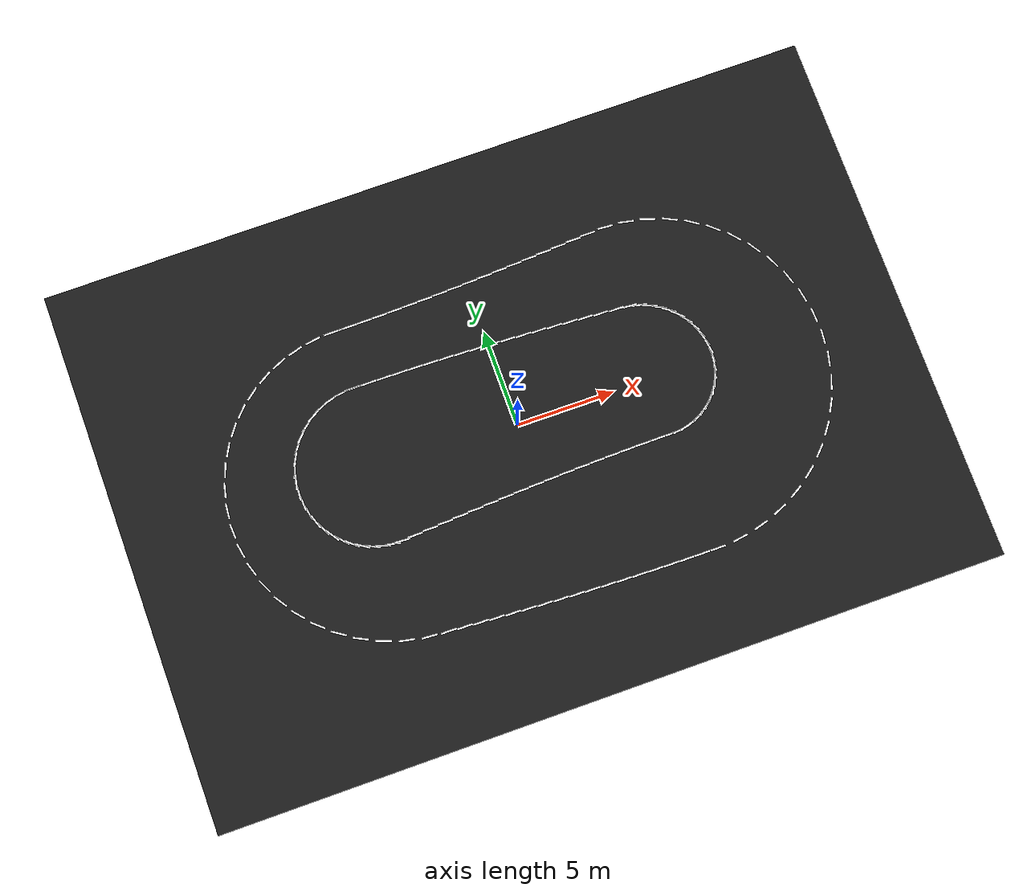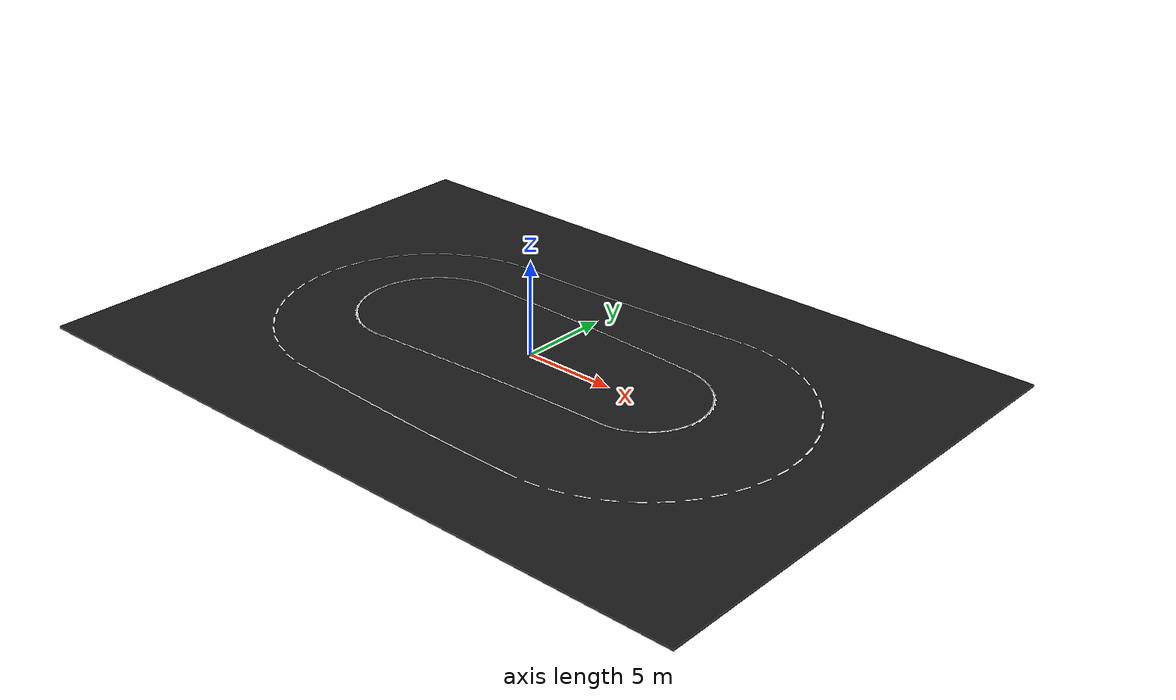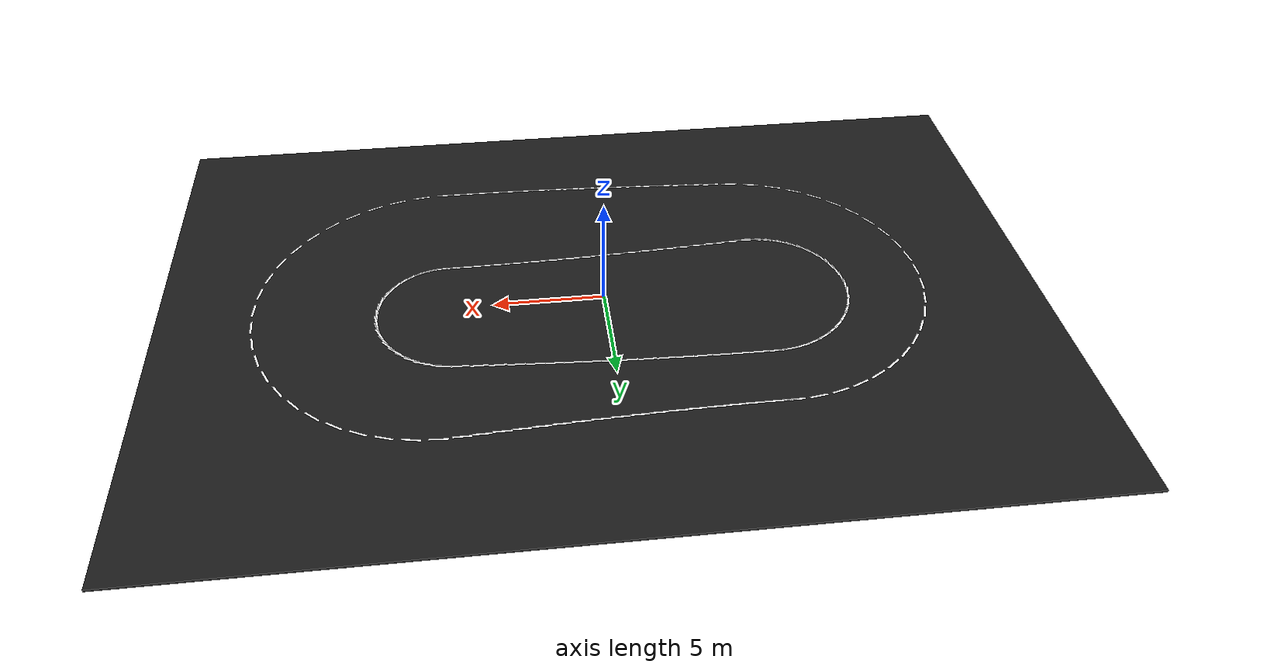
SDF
<sdf version="1.9">
 <world name="lane_vary_no_barrel">
  <physics name="1ms" type="ignored">
   <max_step_size>0.001</max_step_size>
   <real_time_factor>1.0</real_time_factor>
  </physics>
  <plugin filename="libgz-sim8-physics-system.so" name="gz::sim::systems::Physics"/>
  <plugin filename="gz-sim-sensors-system" name="gz::sim::systems::Sensors"/>
  <plugin filename="libgz-sim8-scene-broadcaster-system.so" name="gz::sim::systems::SceneBroadcaster"/>
  <include><uri>https://fuel.gazebosim.org/1.0/openrobotics/models/Sun</uri></include>
  <model name="oval_track_small">
   <static>true</static>
   <link name="track_link">
    <collision name="track_collision">
     <pose>0 0 -0.05 0 0 0</pose>
     <geometry><box><size>40 28 0.10</size></box></geometry>
     <surface><friction><ode><mu>1.2</mu><mu2>1.2</mu2></ode></friction></surface>
    </collision>
    <visual name="track_visual">
     <pose>0 0 -0.05 0 0 0</pose>
     <geometry><box><size>40 28 0.10</size></box></geometry>
     <material>
      <ambient>0.08 0.08 0.08 1</ambient>
      <diffuse>0.10 0.10 0.10 1</diffuse>
      <specular>0.02 0.02 0.02 1</specular>
     </material>
    </visual>
    <visual name="outer_lane_000">
     <pose>-7.0000 7.5240 0.0010 0 0 0.000000</pose>
     <geometry><box><size>0.8000 0.1000 0.0050</size></box></geometry>
     <material><ambient>1 1 1 1</ambient><diffuse>1 1 1 1</diffuse><specular>0.1 0.1 0.1 1</specular></material>
    </visual>
    <visual name="inner_lane_000">
     <pose>-7.0000 4.4760 0.0010 0 0 0.000000</pose>
     <geometry><box><size>0.8000 0.1000 0.0050</size></box></geometry>
     <material><ambient>1 1 1 1</ambient><diffuse>1 1 1 1</diffuse><specular>0.1 0.1 0.1 1</specular></material>
    </visual>
    <visual name="outer_lane_001">
     <pose>-6.2000 7.5262 0.0010 0 0 0.000000</pose>
     <geometry><box><size>0.8000 0.1000 0.0050</size></box></geometry>
     <material><ambient>1 1 1 1</ambient><diffuse>1 1 1 1</diffuse><specular>0.1 0.1 0.1 1</specular></material>
    </visual>
    <visual name="inner_lane_001">
     <pose>-6.2000 4.4738 0.0010 0 0 0.000000</pose>
     <geometry><box><size>0.8000 0.1000 0.0050</size></box></geometry>
     <material><ambient>1 1 1 1</ambient><diffuse>1 1 1 1</diffuse><specular>0.1 0.1 0.1 1</specular></material>
    </visual>
    <visual name="outer_lane_002">
     <pose>-5.4000 7.5329 0.0010 0 0 0.000000</pose>
     <geometry><box><size>0.8000 0.1000 0.0050</size></box></geometry>
     <material><ambient>1 1 1 1</ambient><diffuse>1 1 1 1</diffuse><specular>0.1 0.1 0.1 1</specular></material>
    </visual>
    <visual name="inner_lane_002">
     <pose>-5.4000 4.4671 0.0010 0 0 0.000000</pose>
     <geometry><box><size>0.8000 0.1000 0.0050</size></box></geometry>
     <material><ambient>1 1 1 1</ambient><diffuse>1 1 1 1</diffuse><specular>0.1 0.1 0.1 1</specular></material>
    </visual>
    <visual name="outer_lane_003">
     <pose>-4.6000 7.5440 0.0010 0 0 0.000000</pose>
     <geometry><box><size>0.8000 0.1000 0.0050</size></box></geometry>
     <material><ambient>1 1 1 1</ambient><diffuse>1 1 1 1</diffuse><specular>0.1 0.1 0.1 1</specular></material>
    </visual>
    <visual name="inner_lane_003">
     <pose>-4.6000 4.4560 0.0010 0 0 0.000000</pose>
     <geometry><box><size>0.8000 0.1000 0.0050</size></box></geometry>
     <material><ambient>1 1 1 1</ambient><diffuse>1 1 1 1</diffuse><specular>0.1 0.1 0.1 1</specular></material>
    </visual>
    <visual name="outer_lane_004">
     <pose>-3.8000 7.5594 0.0010 0 0 0.000000</pose>
     <geometry><box><size>0.8000 0.1000 0.0050</size></box></geometry>
     <material><ambient>1 1 1 1</ambient><diffuse>1 1 1 1</diffuse><specular>0.1 0.1 0.1 1</specular></material>
    </visual>
    <visual name="inner_lane_004">
     <pose>-3.8000 4.4406 0.0010 0 0 0.000000</pose>
     <geometry><box><size>0.8000 0.1000 0.0050</size></box></geometry>
     <material><ambient>1 1 1 1</ambient><diffuse>1 1 1 1</diffuse><specular>0.1 0.1 0.1 1</specular></material>
    </visual>
    <visual name="outer_lane_005">
     <pose>-3.0000 7.5791 0.0010 0 0 0.000000</pose>
     <geometry><box><size>0.8000 0.1000 0.0050</size></box></geometry>
     <material><ambient>1 1 1 1</ambient><diffuse>1 1 1 1</diffuse><specular>0.1 0.1 0.1 1</specular></material>
    </visual>
    <visual name="inner_lane_005">
     <pose>-3.0000 4.4209 0.0010 0 0 0.000000</pose>
     <geometry><box><size>0.8000 0.1000 0.0050</size></box></geometry>
     <material><ambient>1 1 1 1</ambient><diffuse>1 1 1 1</diffuse><specular>0.1 0.1 0.1 1</specular></material>
    </visual>
    <visual name="outer_lane_006">
     <pose>-2.2000 7.6029 0.0010 0 0 0.000000</pose>
     <geometry><box><size>0.8000 0.1000 0.0050</size></box></geometry>
     <material><ambient>1 1 1 1</ambient><diffuse>1 1 1 1</diffuse><specular>0.1 0.1 0.1 1</specular></material>
    </visual>
    <visual name="inner_lane_006">
     <pose>-2.2000 4.3971 0.0010 0 0 0.000000</pose>
     <geometry><box><size>0.8000 0.1000 0.0050</size></box></geometry>
     <material><ambient>1 1 1 1</ambient><diffuse>1 1 1 1</diffuse><specular>0.1 0.1 0.1 1</specular></material>
    </visual>
    <visual name="outer_lane_007">
     <pose>-1.4000 7.6307 0.0010 0 0 0.000000</pose>
     <geometry><box><size>0.8000 0.1000 0.0050</size></box></geometry>
     <material><ambient>1 1 1 1</ambient><diffuse>1 1 1 1</diffuse><specular>0.1 0.1 0.1 1</specular></material>
    </visual>
    <visual name="inner_lane_007">
     <pose>-1.4000 4.3693 0.0010 0 0 0.000000</pose>
     <geometry><box><size>0.8000 0.1000 0.0050</size></box></geometry>
     <material><ambient>1 1 1 1</ambient><diffuse>1 1 1 1</diffuse><specular>0.1 0.1 0.1 1</specular></material>
    </visual>
    <visual name="outer_lane_008">
     <pose>-0.6000 7.6623 0.0010 0 0 0.000000</pose>
     <geometry><box><size>0.8000 0.1000 0.0050</size></box></geometry>
     <material><ambient>1 1 1 1</ambient><diffuse>1 1 1 1</diffuse><specular>0.1 0.1 0.1 1</specular></material>
    </visual>
    <visual name="inner_lane_008">
     <pose>-0.6000 4.3377 0.0010 0 0 0.000000</pose>
     <geometry><box><size>0.8000 0.1000 0.0050</size></box></geometry>
     <material><ambient>1 1 1 1</ambient><diffuse>1 1 1 1</diffuse><specular>0.1 0.1 0.1 1</specular></material>
    </visual>
    <visual name="outer_lane_009">
     <pose>0.2000 7.6976 0.0010 0 0 0.000000</pose>
     <geometry><box><size>0.8000 0.1000 0.0050</size></box></geometry>
     <material><ambient>1 1 1 1</ambient><diffuse>1 1 1 1</diffuse><specular>0.1 0.1 0.1 1</specular></material>
    </visual>
    <visual name="inner_lane_009">
     <pose>0.2000 4.3024 0.0010 0 0 0.000000</pose>
     <geometry><box><size>0.8000 0.1000 0.0050</size></box></geometry>
     <material><ambient>1 1 1 1</ambient><diffuse>1 1 1 1</diffuse><specular>0.1 0.1 0.1 1</specular></material>
    </visual>
    <visual name="outer_lane_010">
     <pose>1.0000 7.7364 0.0010 0 0 0.000000</pose>
     <geometry><box><size>0.8000 0.1000 0.0050</size></box></geometry>
     <material><ambient>1 1 1 1</ambient><diffuse>1 1 1 1</diffuse><specular>0.1 0.1 0.1 1</specular></material>
    </visual>
    <visual name="inner_lane_010">
     <pose>1.0000 4.2636 0.0010 0 0 0.000000</pose>
     <geometry><box><size>0.8000 0.1000 0.0050</size></box></geometry>
     <material><ambient>1 1 1 1</ambient><diffuse>1 1 1 1</diffuse><specular>0.1 0.1 0.1 1</specular></material>
    </visual>
    <visual name="outer_lane_011">
     <pose>1.8000 7.7783 0.0010 0 0 0.000000</pose>
     <geometry><box><size>0.8000 0.1000 0.0050</size></box></geometry>
     <material><ambient>1 1 1 1</ambient><diffuse>1 1 1 1</diffuse><specular>0.1 0.1 0.1 1</specular></material>
    </visual>
    <visual name="inner_lane_011">
     <pose>1.8000 4.2217 0.0010 0 0 0.000000</pose>
     <geometry><box><size>0.8000 0.1000 0.0050</size></box></geometry>
     <material><ambient>1 1 1 1</ambient><diffuse>1 1 1 1</diffuse><specular>0.1 0.1 0.1 1</specular></material>
    </visual>
    <visual name="outer_lane_012">
     <pose>2.6000 7.8232 0.0010 0 0 0.000000</pose>
     <geometry><box><size>0.8000 0.1000 0.0050</size></box></geometry>
     <material><ambient>1 1 1 1</ambient><diffuse>1 1 1 1</diffuse><specular>0.1 0.1 0.1 1</specular></material>
    </visual>
    <visual name="inner_lane_012">
     <pose>2.6000 4.1768 0.0010 0 0 0.000000</pose>
     <geometry><box><size>0.8000 0.1000 0.0050</size></box></geometry>
     <material><ambient>1 1 1 1</ambient><diffuse>1 1 1 1</diffuse><specular>0.1 0.1 0.1 1</specular></material>
    </visual>
    <visual name="outer_lane_013">
     <pose>3.4000 7.8708 0.0010 0 0 0.000000</pose>
     <geometry><box><size>0.8000 0.1000 0.0050</size></box></geometry>
     <material><ambient>1 1 1 1</ambient><diffuse>1 1 1 1</diffuse><specular>0.1 0.1 0.1 1</specular></material>
    </visual>
    <visual name="inner_lane_013">
     <pose>3.4000 4.1292 0.0010 0 0 0.000000</pose>
     <geometry><box><size>0.8000 0.1000 0.0050</size></box></geometry>
     <material><ambient>1 1 1 1</ambient><diffuse>1 1 1 1</diffuse><specular>0.1 0.1 0.1 1</specular></material>
    </visual>
    <visual name="outer_lane_014">
     <pose>4.2000 7.9209 0.0010 0 0 0.000000</pose>
     <geometry><box><size>0.8000 0.1000 0.0050</size></box></geometry>
     <material><ambient>1 1 1 1</ambient><diffuse>1 1 1 1</diffuse><specular>0.1 0.1 0.1 1</specular></material>
    </visual>
    <visual name="inner_lane_014">
     <pose>4.2000 4.0791 0.0010 0 0 0.000000</pose>
     <geometry><box><size>0.8000 0.1000 0.0050</size></box></geometry>
     <material><ambient>1 1 1 1</ambient><diffuse>1 1 1 1</diffuse><specular>0.1 0.1 0.1 1</specular></material>
    </visual>
    <visual name="outer_lane_015">
     <pose>5.0000 7.9731 0.0010 0 0 0.000000</pose>
     <geometry><box><size>0.8000 0.1000 0.0050</size></box></geometry>
     <material><ambient>1 1 1 1</ambient><diffuse>1 1 1 1</diffuse><specular>0.1 0.1 0.1 1</specular></material>
    </visual>
    <visual name="inner_lane_015">
     <pose>5.0000 4.0269 0.0010 0 0 0.000000</pose>
     <geometry><box><size>0.8000 0.1000 0.0050</size></box></geometry>
     <material><ambient>1 1 1 1</ambient><diffuse>1 1 1 1</diffuse><specular>0.1 0.1 0.1 1</specular></material>
    </visual>
    <visual name="outer_lane_016">
     <pose>5.8000 8.0271 0.0010 0 0 0.000000</pose>
     <geometry><box><size>0.8000 0.1000 0.0050</size></box></geometry>
     <material><ambient>1 1 1 1</ambient><diffuse>1 1 1 1</diffuse><specular>0.1 0.1 0.1 1</specular></material>
    </visual>
    <visual name="inner_lane_016">
     <pose>5.8000 3.9729 0.0010 0 0 0.000000</pose>
     <geometry><box><size>0.8000 0.1000 0.0050</size></box></geometry>
     <material><ambient>1 1 1 1</ambient><diffuse>1 1 1 1</diffuse><specular>0.1 0.1 0.1 1</specular></material>
    </visual>
    <visual name="outer_lane_017">
     <pose>6.6000 8.0826 0.0010 0 0 0.000000</pose>
     <geometry><box><size>0.8000 0.1000 0.0050</size></box></geometry>
     <material><ambient>1 1 1 1</ambient><diffuse>1 1 1 1</diffuse><specular>0.1 0.1 0.1 1</specular></material>
    </visual>
    <visual name="inner_lane_017">
     <pose>6.6000 3.9174 0.0010 0 0 0.000000</pose>
     <geometry><box><size>0.8000 0.1000 0.0050</size></box></geometry>
     <material><ambient>1 1 1 1</ambient><diffuse>1 1 1 1</diffuse><specular>0.1 0.1 0.1 1</specular></material>
    </visual>
    <visual name="outer_lane_018">
     <pose>7.5422 8.1213 0.0010 0 0 -0.066667</pose>
     <geometry><box><size>0.8000 0.1000 0.0050</size></box></geometry>
     <material><ambient>1 1 1 1</ambient><diffuse>1 1 1 1</diffuse><specular>0.1 0.1 0.1 1</specular></material>
    </visual>
    <visual name="inner_lane_018">
     <pose>7.2572 3.8521 0.0010 0 0 -0.066667</pose>
     <geometry><box><size>0.8000 0.1000 0.0050</size></box></geometry>
     <material><ambient>1 1 1 1</ambient><diffuse>1 1 1 1</diffuse><specular>0.1 0.1 0.1 1</specular></material>
    </visual>
    <visual name="outer_lane_019">
     <pose>8.6285 8.0336 0.0010 0 0 -0.200000</pose>
     <geometry><box><size>0.8000 0.1000 0.0050</size></box></geometry>
     <material><ambient>1 1 1 1</ambient><diffuse>1 1 1 1</diffuse><specular>0.1 0.1 0.1 1</specular></material>
    </visual>
    <visual name="inner_lane_019">
     <pose>7.7555 3.7272 0.0010 0 0 -0.200000</pose>
     <geometry><box><size>0.8000 0.1000 0.0050</size></box></geometry>
     <material><ambient>1 1 1 1</ambient><diffuse>1 1 1 1</diffuse><specular>0.1 0.1 0.1 1</specular></material>
    </visual>
    <visual name="outer_lane_020">
     <pose>9.7010 7.8007 0.0010 0 0 -0.333333</pose>
     <geometry><box><size>0.8000 0.1000 0.0050</size></box></geometry>
     <material><ambient>1 1 1 1</ambient><diffuse>1 1 1 1</diffuse><specular>0.1 0.1 0.1 1</specular></material>
    </visual>
    <visual name="inner_lane_020">
     <pose>8.2253 3.5388 0.0010 0 0 -0.333333</pose>
     <geometry><box><size>0.8000 0.1000 0.0050</size></box></geometry>
     <material><ambient>1 1 1 1</ambient><diffuse>1 1 1 1</diffuse><specular>0.1 0.1 0.1 1</specular></material>
    </visual>
    <visual name="outer_lane_021">
     <pose>10.7403 7.4244 0.0010 0 0 -0.466667</pose>
     <geometry><box><size>0.8000 0.1000 0.0050</size></box></geometry>
     <material><ambient>1 1 1 1</ambient><diffuse>1 1 1 1</diffuse><specular>0.1 0.1 0.1 1</specular></material>
    </visual>
    <visual name="inner_lane_021">
     <pose>8.6587 3.2925 0.0010 0 0 -0.466667</pose>
     <geometry><box><size>0.8000 0.1000 0.0050</size></box></geometry>
     <material><ambient>1 1 1 1</ambient><diffuse>1 1 1 1</diffuse><specular>0.1 0.1 0.1 1</specular></material>
    </visual>
    <visual name="outer_lane_022">
     <pose>11.7269 6.9093 0.0010 0 0 -0.600000</pose>
     <geometry><box><size>0.8000 0.1000 0.0050</size></box></geometry>
     <material><ambient>1 1 1 1</ambient><diffuse>1 1 1 1</diffuse><specular>0.1 0.1 0.1 1</specular></material>
    </visual>
    <visual name="inner_lane_022">
     <pose>9.0488 2.9948 0.0010 0 0 -0.600000</pose>
     <geometry><box><size>0.8000 0.1000 0.0050</size></box></geometry>
     <material><ambient>1 1 1 1</ambient><diffuse>1 1 1 1</diffuse><specular>0.1 0.1 0.1 1</specular></material>
    </visual>
    <visual name="outer_lane_023">
     <pose>12.6420 6.2624 0.0010 0 0 -0.733333</pose>
     <geometry><box><size>0.8000 0.1000 0.0050</size></box></geometry>
     <material><ambient>1 1 1 1</ambient><diffuse>1 1 1 1</diffuse><specular>0.1 0.1 0.1 1</specular></material>
    </visual>
    <visual name="inner_lane_023">
     <pose>9.3902 2.6530 0.0010 0 0 -0.733333</pose>
     <geometry><box><size>0.8000 0.1000 0.0050</size></box></geometry>
     <material><ambient>1 1 1 1</ambient><diffuse>1 1 1 1</diffuse><specular>0.1 0.1 0.1 1</specular></material>
    </visual>
    <visual name="outer_lane_024">
     <pose>13.4677 5.4935 0.0010 0 0 -0.866667</pose>
     <geometry><box><size>0.8000 0.1000 0.0050</size></box></geometry>
     <material><ambient>1 1 1 1</ambient><diffuse>1 1 1 1</diffuse><specular>0.1 0.1 0.1 1</specular></material>
    </visual>
    <visual name="inner_lane_024">
     <pose>9.6784 2.2749 0.0010 0 0 -0.866667</pose>
     <geometry><box><size>0.8000 0.1000 0.0050</size></box></geometry>
     <material><ambient>1 1 1 1</ambient><diffuse>1 1 1 1</diffuse><specular>0.1 0.1 0.1 1</specular></material>
    </visual>
    <visual name="outer_lane_025">
     <pose>14.1874 4.6150 0.0010 0 0 -1.000000</pose>
     <geometry><box><size>0.8000 0.1000 0.0050</size></box></geometry>
     <material><ambient>1 1 1 1</ambient><diffuse>1 1 1 1</diffuse><specular>0.1 0.1 0.1 1</specular></material>
    </visual>
    <visual name="inner_lane_025">
     <pose>9.9102 1.8686 0.0010 0 0 -1.000000</pose>
     <geometry><box><size>0.8000 0.1000 0.0050</size></box></geometry>
     <material><ambient>1 1 1 1</ambient><diffuse>1 1 1 1</diffuse><specular>0.1 0.1 0.1 1</specular></material>
    </visual>
    <visual name="outer_lane_026">
     <pose>14.7862 3.6415 0.0010 0 0 -1.133333</pose>
     <geometry><box><size>0.8000 0.1000 0.0050</size></box></geometry>
     <material><ambient>1 1 1 1</ambient><diffuse>1 1 1 1</diffuse><specular>0.1 0.1 0.1 1</specular></material>
    </visual>
    <visual name="inner_lane_026">
     <pose>10.0838 1.4422 0.0010 0 0 -1.133333</pose>
     <geometry><box><size>0.8000 0.1000 0.0050</size></box></geometry>
     <material><ambient>1 1 1 1</ambient><diffuse>1 1 1 1</diffuse><specular>0.1 0.1 0.1 1</specular></material>
    </visual>
    <visual name="outer_lane_027">
     <pose>15.2511 2.5897 0.0010 0 0 -1.266667</pose>
     <geometry><box><size>0.8000 0.1000 0.0050</size></box></geometry>
     <material><ambient>1 1 1 1</ambient><diffuse>1 1 1 1</diffuse><specular>0.1 0.1 0.1 1</specular></material>
    </visual>
    <visual name="inner_lane_027">
     <pose>10.1982 1.0038 0.0010 0 0 -1.266667</pose>
     <geometry><box><size>0.8000 0.1000 0.0050</size></box></geometry>
     <material><ambient>1 1 1 1</ambient><diffuse>1 1 1 1</diffuse><specular>0.1 0.1 0.1 1</specular></material>
    </visual>
    <visual name="outer_lane_028">
     <pose>15.5716 1.4784 0.0010 0 0 -1.400000</pose>
     <geometry><box><size>0.8000 0.1000 0.0050</size></box></geometry>
     <material><ambient>1 1 1 1</ambient><diffuse>1 1 1 1</diffuse><specular>0.1 0.1 0.1 1</specular></material>
    </visual>
    <visual name="inner_lane_028">
     <pose>10.2538 0.5612 0.0010 0 0 -1.400000</pose>
     <geometry><box><size>0.8000 0.1000 0.0050</size></box></geometry>
     <material><ambient>1 1 1 1</ambient><diffuse>1 1 1 1</diffuse><specular>0.1 0.1 0.1 1</specular></material>
    </visual>
    <visual name="outer_lane_029">
     <pose>15.7398 0.3276 0.0010 0 0 -1.533333</pose>
     <geometry><box><size>0.8000 0.1000 0.0050</size></box></geometry>
     <material><ambient>1 1 1 1</ambient><diffuse>1 1 1 1</diffuse><specular>0.1 0.1 0.1 1</specular></material>
    </visual>
    <visual name="inner_lane_029">
     <pose>10.2518 0.1219 0.0010 0 0 -1.533333</pose>
     <geometry><box><size>0.8000 0.1000 0.0050</size></box></geometry>
     <material><ambient>1 1 1 1</ambient><diffuse>1 1 1 1</diffuse><specular>0.1 0.1 0.1 1</specular></material>
    </visual>
    <visual name="outer_lane_030">
     <pose>15.7506 -0.8415 0.0010 0 0 -1.666667</pose>
     <geometry><box><size>0.8000 0.1000 0.0050</size></box></geometry>
     <material><ambient>1 1 1 1</ambient><diffuse>1 1 1 1</diffuse><specular>0.1 0.1 0.1 1</specular></material>
    </visual>
    <visual name="inner_lane_030">
     <pose>10.1943 -0.3072 0.0010 0 0 -1.666667</pose>
     <geometry><box><size>0.8000 0.1000 0.0050</size></box></geometry>
     <material><ambient>1 1 1 1</ambient><diffuse>1 1 1 1</diffuse><specular>0.1 0.1 0.1 1</specular></material>
    </visual>
    <visual name="outer_lane_031">
     <pose>15.6021 -2.0069 0.0010 0 0 -1.800000</pose>
     <geometry><box><size>0.8000 0.1000 0.0050</size></box></geometry>
     <material><ambient>1 1 1 1</ambient><diffuse>1 1 1 1</diffuse><specular>0.1 0.1 0.1 1</specular></material>
    </visual>
    <visual name="inner_lane_031">
     <pose>10.0840 -0.7195 0.0010 0 0 -1.800000</pose>
     <geometry><box><size>0.8000 0.1000 0.0050</size></box></geometry>
     <material><ambient>1 1 1 1</ambient><diffuse>1 1 1 1</diffuse><specular>0.1 0.1 0.1 1</specular></material>
    </visual>
    <visual name="outer_lane_032">
     <pose>15.2954 -3.1465 0.0010 0 0 -1.933333</pose>
     <geometry><box><size>0.8000 0.1000 0.0050</size></box></geometry>
     <material><ambient>1 1 1 1</ambient><diffuse>1 1 1 1</diffuse><specular>0.1 0.1 0.1 1</specular></material>
    </visual>
    <visual name="inner_lane_032">
     <pose>9.9246 -1.1093 0.0010 0 0 -1.933333</pose>
     <geometry><box><size>0.8000 0.1000 0.0050</size></box></geometry>
     <material><ambient>1 1 1 1</ambient><diffuse>1 1 1 1</diffuse><specular>0.1 0.1 0.1 1</specular></material>
    </visual>
    <visual name="outer_lane_033">
     <pose>14.8347 -4.2382 0.0010 0 0 -2.066667</pose>
     <geometry><box><size>0.8000 0.1000 0.0050</size></box></geometry>
     <material><ambient>1 1 1 1</ambient><diffuse>1 1 1 1</diffuse><specular>0.1 0.1 0.1 1</specular></material>
    </visual>
    <visual name="inner_lane_033">
     <pose>9.7199 -1.4714 0.0010 0 0 -2.066667</pose>
     <geometry><box><size>0.8000 0.1000 0.0050</size></box></geometry>
     <material><ambient>1 1 1 1</ambient><diffuse>1 1 1 1</diffuse><specular>0.1 0.1 0.1 1</specular></material>
    </visual>
    <visual name="outer_lane_034">
     <pose>14.2275 -5.2609 0.0010 0 0 -2.200000</pose>
     <geometry><box><size>0.8000 0.1000 0.0050</size></box></geometry>
     <material><ambient>1 1 1 1</ambient><diffuse>1 1 1 1</diffuse><specular>0.1 0.1 0.1 1</specular></material>
    </visual>
    <visual name="inner_lane_034">
     <pose>9.4744 -1.8011 0.0010 0 0 -2.200000</pose>
     <geometry><box><size>0.8000 0.1000 0.0050</size></box></geometry>
     <material><ambient>1 1 1 1</ambient><diffuse>1 1 1 1</diffuse><specular>0.1 0.1 0.1 1</specular></material>
    </visual>
    <visual name="outer_lane_035">
     <pose>13.4843 -6.1944 0.0010 0 0 -2.333333</pose>
     <geometry><box><size>0.8000 0.1000 0.0050</size></box></geometry>
     <material><ambient>1 1 1 1</ambient><diffuse>1 1 1 1</diffuse><specular>0.1 0.1 0.1 1</specular></material>
    </visual>
    <visual name="inner_lane_035">
     <pose>9.1928 -2.0947 0.0010 0 0 -2.333333</pose>
     <geometry><box><size>0.8000 0.1000 0.0050</size></box></geometry>
     <material><ambient>1 1 1 1</ambient><diffuse>1 1 1 1</diffuse><specular>0.1 0.1 0.1 1</specular></material>
    </visual>
    <visual name="outer_lane_036">
     <pose>12.6183 -7.0202 0.0010 0 0 -2.466667</pose>
     <geometry><box><size>0.8000 0.1000 0.0050</size></box></geometry>
     <material><ambient>1 1 1 1</ambient><diffuse>1 1 1 1</diffuse><specular>0.1 0.1 0.1 1</specular></material>
    </visual>
    <visual name="inner_lane_036">
     <pose>8.8798 -2.3488 0.0010 0 0 -2.466667</pose>
     <geometry><box><size>0.8000 0.1000 0.0050</size></box></geometry>
     <material><ambient>1 1 1 1</ambient><diffuse>1 1 1 1</diffuse><specular>0.1 0.1 0.1 1</specular></material>
    </visual>
    <visual name="outer_lane_037">
     <pose>11.6454 -7.7219 0.0010 0 0 -2.600000</pose>
     <geometry><box><size>0.8000 0.1000 0.0050</size></box></geometry>
     <material><ambient>1 1 1 1</ambient><diffuse>1 1 1 1</diffuse><specular>0.1 0.1 0.1 1</specular></material>
    </visual>
    <visual name="inner_lane_037">
     <pose>8.5406 -2.5608 0.0010 0 0 -2.600000</pose>
     <geometry><box><size>0.8000 0.1000 0.0050</size></box></geometry>
     <material><ambient>1 1 1 1</ambient><diffuse>1 1 1 1</diffuse><specular>0.1 0.1 0.1 1</specular></material>
    </visual>
    <visual name="outer_lane_038">
     <pose>10.5839 -8.2853 0.0010 0 0 -2.733333</pose>
     <geometry><box><size>0.8000 0.1000 0.0050</size></box></geometry>
     <material><ambient>1 1 1 1</ambient><diffuse>1 1 1 1</diffuse><specular>0.1 0.1 0.1 1</specular></material>
    </visual>
    <visual name="inner_lane_038">
     <pose>8.1802 -2.7285 0.0010 0 0 -2.733333</pose>
     <geometry><box><size>0.8000 0.1000 0.0050</size></box></geometry>
     <material><ambient>1 1 1 1</ambient><diffuse>1 1 1 1</diffuse><specular>0.1 0.1 0.1 1</specular></material>
    </visual>
    <visual name="outer_lane_039">
     <pose>9.4537 -8.6991 0.0010 0 0 -2.866667</pose>
     <geometry><box><size>0.8000 0.1000 0.0050</size></box></geometry>
     <material><ambient>1 1 1 1</ambient><diffuse>1 1 1 1</diffuse><specular>0.1 0.1 0.1 1</specular></material>
    </visual>
    <visual name="inner_lane_039">
     <pose>7.8040 -2.8502 0.0010 0 0 -2.866667</pose>
     <geometry><box><size>0.8000 0.1000 0.0050</size></box></geometry>
     <material><ambient>1 1 1 1</ambient><diffuse>1 1 1 1</diffuse><specular>0.1 0.1 0.1 1</specular></material>
    </visual>
    <visual name="outer_lane_040">
     <pose>8.2765 -8.9550 0.0010 0 0 -3.000000</pose>
     <geometry><box><size>0.8000 0.1000 0.0050</size></box></geometry>
     <material><ambient>1 1 1 1</ambient><diffuse>1 1 1 1</diffuse><specular>0.1 0.1 0.1 1</specular></material>
    </visual>
    <visual name="inner_lane_040">
     <pose>7.4169 -2.9249 0.0010 0 0 -3.000000</pose>
     <geometry><box><size>0.8000 0.1000 0.0050</size></box></geometry>
     <material><ambient>1 1 1 1</ambient><diffuse>1 1 1 1</diffuse><specular>0.1 0.1 0.1 1</specular></material>
    </visual>
    <visual name="outer_lane_041">
     <pose>7.0747 -9.0477 0.0010 0 0 -3.133333</pose>
     <geometry><box><size>0.8000 0.1000 0.0050</size></box></geometry>
     <material><ambient>1 1 1 1</ambient><diffuse>1 1 1 1</diffuse><specular>0.1 0.1 0.1 1</specular></material>
    </visual>
    <visual name="inner_lane_041">
     <pose>7.0244 -2.9519 0.0010 0 0 -3.133333</pose>
     <geometry><box><size>0.8000 0.1000 0.0050</size></box></geometry>
     <material><ambient>1 1 1 1</ambient><diffuse>1 1 1 1</diffuse><specular>0.1 0.1 0.1 1</specular></material>
    </visual>
    <visual name="outer_lane_042">
     <pose>6.2496 -9.0460 0.0010 0 0 3.141593</pose>
     <geometry><box><size>0.8000 0.1000 0.0050</size></box></geometry>
     <material><ambient>1 1 1 1</ambient><diffuse>1 1 1 1</diffuse><specular>0.1 0.1 0.1 1</specular></material>
    </visual>
    <visual name="inner_lane_042">
     <pose>6.2496 -2.9540 0.0010 0 0 3.141593</pose>
     <geometry><box><size>0.8000 0.1000 0.0050</size></box></geometry>
     <material><ambient>1 1 1 1</ambient><diffuse>1 1 1 1</diffuse><specular>0.1 0.1 0.1 1</specular></material>
    </visual>
    <visual name="outer_lane_043">
     <pose>5.4496 -9.0396 0.0010 0 0 3.141593</pose>
     <geometry><box><size>0.8000 0.1000 0.0050</size></box></geometry>
     <material><ambient>1 1 1 1</ambient><diffuse>1 1 1 1</diffuse><specular>0.1 0.1 0.1 1</specular></material>
    </visual>
    <visual name="inner_lane_043">
     <pose>5.4496 -2.9604 0.0010 0 0 3.141593</pose>
     <geometry><box><size>0.8000 0.1000 0.0050</size></box></geometry>
     <material><ambient>1 1 1 1</ambient><diffuse>1 1 1 1</diffuse><specular>0.1 0.1 0.1 1</specular></material>
    </visual>
    <visual name="outer_lane_044">
     <pose>4.6496 -9.0288 0.0010 0 0 3.141593</pose>
     <geometry><box><size>0.8000 0.1000 0.0050</size></box></geometry>
     <material><ambient>1 1 1 1</ambient><diffuse>1 1 1 1</diffuse><specular>0.1 0.1 0.1 1</specular></material>
    </visual>
    <visual name="inner_lane_044">
     <pose>4.6496 -2.9712 0.0010 0 0 3.141593</pose>
     <geometry><box><size>0.8000 0.1000 0.0050</size></box></geometry>
     <material><ambient>1 1 1 1</ambient><diffuse>1 1 1 1</diffuse><specular>0.1 0.1 0.1 1</specular></material>
    </visual>
    <visual name="outer_lane_045">
     <pose>3.8496 -9.0137 0.0010 0 0 3.141593</pose>
     <geometry><box><size>0.8000 0.1000 0.0050</size></box></geometry>
     <material><ambient>1 1 1 1</ambient><diffuse>1 1 1 1</diffuse><specular>0.1 0.1 0.1 1</specular></material>
    </visual>
    <visual name="inner_lane_045">
     <pose>3.8496 -2.9863 0.0010 0 0 3.141593</pose>
     <geometry><box><size>0.8000 0.1000 0.0050</size></box></geometry>
     <material><ambient>1 1 1 1</ambient><diffuse>1 1 1 1</diffuse><specular>0.1 0.1 0.1 1</specular></material>
    </visual>
    <visual name="outer_lane_046">
     <pose>3.0496 -8.9943 0.0010 0 0 3.141593</pose>
     <geometry><box><size>0.8000 0.1000 0.0050</size></box></geometry>
     <material><ambient>1 1 1 1</ambient><diffuse>1 1 1 1</diffuse><specular>0.1 0.1 0.1 1</specular></material>
    </visual>
    <visual name="inner_lane_046">
     <pose>3.0496 -3.0057 0.0010 0 0 3.141593</pose>
     <geometry><box><size>0.8000 0.1000 0.0050</size></box></geometry>
     <material><ambient>1 1 1 1</ambient><diffuse>1 1 1 1</diffuse><specular>0.1 0.1 0.1 1</specular></material>
    </visual>
    <visual name="outer_lane_047">
     <pose>2.2496 -8.9707 0.0010 0 0 3.141593</pose>
     <geometry><box><size>0.8000 0.1000 0.0050</size></box></geometry>
     <material><ambient>1 1 1 1</ambient><diffuse>1 1 1 1</diffuse><specular>0.1 0.1 0.1 1</specular></material>
    </visual>
    <visual name="inner_lane_047">
     <pose>2.2496 -3.0293 0.0010 0 0 3.141593</pose>
     <geometry><box><size>0.8000 0.1000 0.0050</size></box></geometry>
     <material><ambient>1 1 1 1</ambient><diffuse>1 1 1 1</diffuse><specular>0.1 0.1 0.1 1</specular></material>
    </visual>
    <visual name="outer_lane_048">
     <pose>1.4496 -8.9431 0.0010 0 0 3.141593</pose>
     <geometry><box><size>0.8000 0.1000 0.0050</size></box></geometry>
     <material><ambient>1 1 1 1</ambient><diffuse>1 1 1 1</diffuse><specular>0.1 0.1 0.1 1</specular></material>
    </visual>
    <visual name="inner_lane_048">
     <pose>1.4496 -3.0569 0.0010 0 0 3.141593</pose>
     <geometry><box><size>0.8000 0.1000 0.0050</size></box></geometry>
     <material><ambient>1 1 1 1</ambient><diffuse>1 1 1 1</diffuse><specular>0.1 0.1 0.1 1</specular></material>
    </visual>
    <visual name="outer_lane_049">
     <pose>0.6496 -8.9117 0.0010 0 0 3.141593</pose>
     <geometry><box><size>0.8000 0.1000 0.0050</size></box></geometry>
     <material><ambient>1 1 1 1</ambient><diffuse>1 1 1 1</diffuse><specular>0.1 0.1 0.1 1</specular></material>
    </visual>
    <visual name="inner_lane_049">
     <pose>0.6496 -3.0883 0.0010 0 0 3.141593</pose>
     <geometry><box><size>0.8000 0.1000 0.0050</size></box></geometry>
     <material><ambient>1 1 1 1</ambient><diffuse>1 1 1 1</diffuse><specular>0.1 0.1 0.1 1</specular></material>
    </visual>
    <visual name="outer_lane_050">
     <pose>-0.1504 -8.8767 0.0010 0 0 3.141593</pose>
     <geometry><box><size>0.8000 0.1000 0.0050</size></box></geometry>
     <material><ambient>1 1 1 1</ambient><diffuse>1 1 1 1</diffuse><specular>0.1 0.1 0.1 1</specular></material>
    </visual>
    <visual name="inner_lane_050">
     <pose>-0.1504 -3.1233 0.0010 0 0 3.141593</pose>
     <geometry><box><size>0.8000 0.1000 0.0050</size></box></geometry>
     <material><ambient>1 1 1 1</ambient><diffuse>1 1 1 1</diffuse><specular>0.1 0.1 0.1 1</specular></material>
    </visual>
    <visual name="outer_lane_051">
     <pose>-0.9504 -8.8381 0.0010 0 0 3.141593</pose>
     <geometry><box><size>0.8000 0.1000 0.0050</size></box></geometry>
     <material><ambient>1 1 1 1</ambient><diffuse>1 1 1 1</diffuse><specular>0.1 0.1 0.1 1</specular></material>
    </visual>
    <visual name="inner_lane_051">
     <pose>-0.9504 -3.1619 0.0010 0 0 3.141593</pose>
     <geometry><box><size>0.8000 0.1000 0.0050</size></box></geometry>
     <material><ambient>1 1 1 1</ambient><diffuse>1 1 1 1</diffuse><specular>0.1 0.1 0.1 1</specular></material>
    </visual>
    <visual name="outer_lane_052">
     <pose>-1.7504 -8.7964 0.0010 0 0 3.141593</pose>
     <geometry><box><size>0.8000 0.1000 0.0050</size></box></geometry>
     <material><ambient>1 1 1 1</ambient><diffuse>1 1 1 1</diffuse><specular>0.1 0.1 0.1 1</specular></material>
    </visual>
    <visual name="inner_lane_052">
     <pose>-1.7504 -3.2036 0.0010 0 0 3.141593</pose>
     <geometry><box><size>0.8000 0.1000 0.0050</size></box></geometry>
     <material><ambient>1 1 1 1</ambient><diffuse>1 1 1 1</diffuse><specular>0.1 0.1 0.1 1</specular></material>
    </visual>
    <visual name="outer_lane_053">
     <pose>-2.5504 -8.7516 0.0010 0 0 3.141593</pose>
     <geometry><box><size>0.8000 0.1000 0.0050</size></box></geometry>
     <material><ambient>1 1 1 1</ambient><diffuse>1 1 1 1</diffuse><specular>0.1 0.1 0.1 1</specular></material>
    </visual>
    <visual name="inner_lane_053">
     <pose>-2.5504 -3.2484 0.0010 0 0 3.141593</pose>
     <geometry><box><size>0.8000 0.1000 0.0050</size></box></geometry>
     <material><ambient>1 1 1 1</ambient><diffuse>1 1 1 1</diffuse><specular>0.1 0.1 0.1 1</specular></material>
    </visual>
    <visual name="outer_lane_054">
     <pose>-3.3504 -8.7042 0.0010 0 0 3.141593</pose>
     <geometry><box><size>0.8000 0.1000 0.0050</size></box></geometry>
     <material><ambient>1 1 1 1</ambient><diffuse>1 1 1 1</diffuse><specular>0.1 0.1 0.1 1</specular></material>
    </visual>
    <visual name="inner_lane_054">
     <pose>-3.3504 -3.2958 0.0010 0 0 3.141593</pose>
     <geometry><box><size>0.8000 0.1000 0.0050</size></box></geometry>
     <material><ambient>1 1 1 1</ambient><diffuse>1 1 1 1</diffuse><specular>0.1 0.1 0.1 1</specular></material>
    </visual>
    <visual name="outer_lane_055">
     <pose>-4.1504 -8.6543 0.0010 0 0 3.141593</pose>
     <geometry><box><size>0.8000 0.1000 0.0050</size></box></geometry>
     <material><ambient>1 1 1 1</ambient><diffuse>1 1 1 1</diffuse><specular>0.1 0.1 0.1 1</specular></material>
    </visual>
    <visual name="inner_lane_055">
     <pose>-4.1504 -3.3457 0.0010 0 0 3.141593</pose>
     <geometry><box><size>0.8000 0.1000 0.0050</size></box></geometry>
     <material><ambient>1 1 1 1</ambient><diffuse>1 1 1 1</diffuse><specular>0.1 0.1 0.1 1</specular></material>
    </visual>
    <visual name="outer_lane_056">
     <pose>-4.9504 -8.6022 0.0010 0 0 3.141593</pose>
     <geometry><box><size>0.8000 0.1000 0.0050</size></box></geometry>
     <material><ambient>1 1 1 1</ambient><diffuse>1 1 1 1</diffuse><specular>0.1 0.1 0.1 1</specular></material>
    </visual>
    <visual name="inner_lane_056">
     <pose>-4.9504 -3.3978 0.0010 0 0 3.141593</pose>
     <geometry><box><size>0.8000 0.1000 0.0050</size></box></geometry>
     <material><ambient>1 1 1 1</ambient><diffuse>1 1 1 1</diffuse><specular>0.1 0.1 0.1 1</specular></material>
    </visual>
    <visual name="outer_lane_057">
     <pose>-5.7504 -8.5483 0.0010 0 0 3.141593</pose>
     <geometry><box><size>0.8000 0.1000 0.0050</size></box></geometry>
     <material><ambient>1 1 1 1</ambient><diffuse>1 1 1 1</diffuse><specular>0.1 0.1 0.1 1</specular></material>
    </visual>
    <visual name="inner_lane_057">
     <pose>-5.7504 -3.4517 0.0010 0 0 3.141593</pose>
     <geometry><box><size>0.8000 0.1000 0.0050</size></box></geometry>
     <material><ambient>1 1 1 1</ambient><diffuse>1 1 1 1</diffuse><specular>0.1 0.1 0.1 1</specular></material>
    </visual>
    <visual name="outer_lane_058">
     <pose>-6.5504 -8.4928 0.0010 0 0 3.141593</pose>
     <geometry><box><size>0.8000 0.1000 0.0050</size></box></geometry>
     <material><ambient>1 1 1 1</ambient><diffuse>1 1 1 1</diffuse><specular>0.1 0.1 0.1 1</specular></material>
    </visual>
    <visual name="inner_lane_058">
     <pose>-6.5504 -3.5072 0.0010 0 0 3.141593</pose>
     <geometry><box><size>0.8000 0.1000 0.0050</size></box></geometry>
     <material><ambient>1 1 1 1</ambient><diffuse>1 1 1 1</diffuse><specular>0.1 0.1 0.1 1</specular></material>
    </visual>
    <visual name="outer_lane_059">
     <pose>-7.4925 -8.4218 0.0010 0 0 -3.200000</pose>
     <geometry><box><size>0.8000 0.1000 0.0050</size></box></geometry>
     <material><ambient>1 1 1 1</ambient><diffuse>1 1 1 1</diffuse><specular>0.1 0.1 0.1 1</specular></material>
    </visual>
    <visual name="inner_lane_059">
     <pose>-7.2080 -3.5577 0.0010 0 0 -3.200000</pose>
     <geometry><box><size>0.8000 0.1000 0.0050</size></box></geometry>
     <material><ambient>1 1 1 1</ambient><diffuse>1 1 1 1</diffuse><specular>0.1 0.1 0.1 1</specular></material>
    </visual>
    <visual name="outer_lane_060">
     <pose>-8.5967 -8.2251 0.0010 0 0 -3.333333</pose>
     <geometry><box><size>0.8000 0.1000 0.0050</size></box></geometry>
     <material><ambient>1 1 1 1</ambient><diffuse>1 1 1 1</diffuse><specular>0.1 0.1 0.1 1</specular></material>
    </visual>
    <visual name="inner_lane_060">
     <pose>-7.6901 -3.5550 0.0010 0 0 -3.333333</pose>
     <geometry><box><size>0.8000 0.1000 0.0050</size></box></geometry>
     <material><ambient>1 1 1 1</ambient><diffuse>1 1 1 1</diffuse><specular>0.1 0.1 0.1 1</specular></material>
    </visual>
    <visual name="outer_lane_061">
     <pose>-9.6574 -7.8848 0.0010 0 0 -3.466667</pose>
     <geometry><box><size>0.8000 0.1000 0.0050</size></box></geometry>
     <material><ambient>1 1 1 1</ambient><diffuse>1 1 1 1</diffuse><specular>0.1 0.1 0.1 1</specular></material>
    </visual>
    <visual name="inner_lane_061">
     <pose>-8.1751 -3.4867 0.0010 0 0 -3.466667</pose>
     <geometry><box><size>0.8000 0.1000 0.0050</size></box></geometry>
     <material><ambient>1 1 1 1</ambient><diffuse>1 1 1 1</diffuse><specular>0.1 0.1 0.1 1</specular></material>
    </visual>
    <visual name="outer_lane_062">
     <pose>-10.6562 -7.4093 0.0010 0 0 -3.600000</pose>
     <geometry><box><size>0.8000 0.1000 0.0050</size></box></geometry>
     <material><ambient>1 1 1 1</ambient><diffuse>1 1 1 1</diffuse><specular>0.1 0.1 0.1 1</specular></material>
    </visual>
    <visual name="inner_lane_062">
     <pose>-8.6540 -3.3518 0.0010 0 0 -3.600000</pose>
     <geometry><box><size>0.8000 0.1000 0.0050</size></box></geometry>
     <material><ambient>1 1 1 1</ambient><diffuse>1 1 1 1</diffuse><specular>0.1 0.1 0.1 1</specular></material>
    </visual>
    <visual name="outer_lane_063">
     <pose>-11.5763 -6.8092 0.0010 0 0 -3.733333</pose>
     <geometry><box><size>0.8000 0.1000 0.0050</size></box></geometry>
     <material><ambient>1 1 1 1</ambient><diffuse>1 1 1 1</diffuse><specular>0.1 0.1 0.1 1</specular></material>
    </visual>
    <visual name="inner_lane_063">
     <pose>-9.1174 -3.1505 0.0010 0 0 -3.733333</pose>
     <geometry><box><size>0.8000 0.1000 0.0050</size></box></geometry>
     <material><ambient>1 1 1 1</ambient><diffuse>1 1 1 1</diffuse><specular>0.1 0.1 0.1 1</specular></material>
    </visual>
    <visual name="outer_lane_064">
     <pose>-12.4027 -6.0972 0.0010 0 0 -3.866667</pose>
     <geometry><box><size>0.8000 0.1000 0.0050</size></box></geometry>
     <material><ambient>1 1 1 1</ambient><diffuse>1 1 1 1</diffuse><specular>0.1 0.1 0.1 1</specular></material>
    </visual>
    <visual name="inner_lane_064">
     <pose>-9.5556 -2.8842 0.0010 0 0 -3.866667</pose>
     <geometry><box><size>0.8000 0.1000 0.0050</size></box></geometry>
     <material><ambient>1 1 1 1</ambient><diffuse>1 1 1 1</diffuse><specular>0.1 0.1 0.1 1</specular></material>
    </visual>
    <visual name="outer_lane_065">
     <pose>-13.1222 -5.2877 0.0010 0 0 -4.000000</pose>
     <geometry><box><size>0.8000 0.1000 0.0050</size></box></geometry>
     <material><ambient>1 1 1 1</ambient><diffuse>1 1 1 1</diffuse><specular>0.1 0.1 0.1 1</specular></material>
    </visual>
    <visual name="inner_lane_065">
     <pose>-9.9594 -2.5560 0.0010 0 0 -4.000000</pose>
     <geometry><box><size>0.8000 0.1000 0.0050</size></box></geometry>
     <material><ambient>1 1 1 1</ambient><diffuse>1 1 1 1</diffuse><specular>0.1 0.1 0.1 1</specular></material>
    </visual>
    <visual name="outer_lane_066">
     <pose>-13.7242 -4.3964 0.0010 0 0 -4.133333</pose>
     <geometry><box><size>0.8000 0.1000 0.0050</size></box></geometry>
     <material><ambient>1 1 1 1</ambient><diffuse>1 1 1 1</diffuse><specular>0.1 0.1 0.1 1</specular></material>
    </visual>
    <visual name="inner_lane_066">
     <pose>-10.3195 -2.1704 0.0010 0 0 -4.133333</pose>
     <geometry><box><size>0.8000 0.1000 0.0050</size></box></geometry>
     <material><ambient>1 1 1 1</ambient><diffuse>1 1 1 1</diffuse><specular>0.1 0.1 0.1 1</specular></material>
    </visual>
    <visual name="outer_lane_067">
     <pose>-14.2001 -3.4401 0.0010 0 0 -4.266667</pose>
     <geometry><box><size>0.8000 0.1000 0.0050</size></box></geometry>
     <material><ambient>1 1 1 1</ambient><diffuse>1 1 1 1</diffuse><specular>0.1 0.1 0.1 1</specular></material>
    </visual>
    <visual name="inner_lane_067">
     <pose>-10.6275 -1.7332 0.0010 0 0 -4.266667</pose>
     <geometry><box><size>0.8000 0.1000 0.0050</size></box></geometry>
     <material><ambient>1 1 1 1</ambient><diffuse>1 1 1 1</diffuse><specular>0.1 0.1 0.1 1</specular></material>
    </visual>
    <visual name="outer_lane_068">
     <pose>-14.5436 -2.4363 0.0010 0 0 -4.400000</pose>
     <geometry><box><size>0.8000 0.1000 0.0050</size></box></geometry>
     <material><ambient>1 1 1 1</ambient><diffuse>1 1 1 1</diffuse><specular>0.1 0.1 0.1 1</specular></material>
    </visual>
    <visual name="inner_lane_068">
     <pose>-10.8756 -1.2517 0.0010 0 0 -4.400000</pose>
     <geometry><box><size>0.8000 0.1000 0.0050</size></box></geometry>
     <material><ambient>1 1 1 1</ambient><diffuse>1 1 1 1</diffuse><specular>0.1 0.1 0.1 1</specular></material>
    </visual>
    <visual name="outer_lane_069">
     <pose>-14.7510 -1.4029 0.0010 0 0 -4.533333</pose>
     <geometry><box><size>0.8000 0.1000 0.0050</size></box></geometry>
     <material><ambient>1 1 1 1</ambient><diffuse>1 1 1 1</diffuse><specular>0.1 0.1 0.1 1</specular></material>
    </visual>
    <visual name="inner_lane_069">
     <pose>-11.0572 -0.7343 0.0010 0 0 -4.533333</pose>
     <geometry><box><size>0.8000 0.1000 0.0050</size></box></geometry>
     <material><ambient>1 1 1 1</ambient><diffuse>1 1 1 1</diffuse><specular>0.1 0.1 0.1 1</specular></material>
    </visual>
    <visual name="outer_lane_070">
     <pose>-14.8208 -0.3578 0.0010 0 0 -4.666667</pose>
     <geometry><box><size>0.8000 0.1000 0.0050</size></box></geometry>
     <material><ambient>1 1 1 1</ambient><diffuse>1 1 1 1</diffuse><specular>0.1 0.1 0.1 1</specular></material>
    </visual>
    <visual name="inner_lane_070">
     <pose>-11.1667 -0.1906 0.0010 0 0 -4.666667</pose>
     <geometry><box><size>0.8000 0.1000 0.0050</size></box></geometry>
     <material><ambient>1 1 1 1</ambient><diffuse>1 1 1 1</diffuse><specular>0.1 0.1 0.1 1</specular></material>
    </visual>
    <visual name="outer_lane_071">
     <pose>-14.7539 0.6811 0.0010 0 0 -4.800000</pose>
     <geometry><box><size>0.8000 0.1000 0.0050</size></box></geometry>
     <material><ambient>1 1 1 1</ambient><diffuse>1 1 1 1</diffuse><specular>0.1 0.1 0.1 1</specular></material>
    </visual>
    <visual name="inner_lane_071">
     <pose>-11.2001 0.3689 0.0010 0 0 -4.800000</pose>
     <geometry><box><size>0.8000 0.1000 0.0050</size></box></geometry>
     <material><ambient>1 1 1 1</ambient><diffuse>1 1 1 1</diffuse><specular>0.1 0.1 0.1 1</specular></material>
    </visual>
    <visual name="outer_lane_072">
     <pose>-14.5532 1.6965 0.0010 0 0 -4.933333</pose>
     <geometry><box><size>0.8000 0.1000 0.0050</size></box></geometry>
     <material><ambient>1 1 1 1</ambient><diffuse>1 1 1 1</diffuse><specular>0.1 0.1 0.1 1</specular></material>
    </visual>
    <visual name="inner_lane_072">
     <pose>-11.1551 0.9333 0.0010 0 0 -4.933333</pose>
     <geometry><box><size>0.8000 0.1000 0.0050</size></box></geometry>
     <material><ambient>1 1 1 1</ambient><diffuse>1 1 1 1</diffuse><specular>0.1 0.1 0.1 1</specular></material>
    </visual>
    <visual name="outer_lane_073">
     <pose>-14.2239 2.6720 0.0010 0 0 -5.066667</pose>
     <geometry><box><size>0.8000 0.1000 0.0050</size></box></geometry>
     <material><ambient>1 1 1 1</ambient><diffuse>1 1 1 1</diffuse><specular>0.1 0.1 0.1 1</specular></material>
    </visual>
    <visual name="inner_lane_073">
     <pose>-11.0309 1.4909 0.0010 0 0 -5.066667</pose>
     <geometry><box><size>0.8000 0.1000 0.0050</size></box></geometry>
     <material><ambient>1 1 1 1</ambient><diffuse>1 1 1 1</diffuse><specular>0.1 0.1 0.1 1</specular></material>
    </visual>
    <visual name="outer_lane_074">
     <pose>-13.7730 3.5919 0.0010 0 0 -5.200000</pose>
     <geometry><box><size>0.8000 0.1000 0.0050</size></box></geometry>
     <material><ambient>1 1 1 1</ambient><diffuse>1 1 1 1</diffuse><specular>0.1 0.1 0.1 1</specular></material>
    </visual>
    <visual name="inner_lane_074">
     <pose>-10.8284 2.0303 0.0010 0 0 -5.200000</pose>
     <geometry><box><size>0.8000 0.1000 0.0050</size></box></geometry>
     <material><ambient>1 1 1 1</ambient><diffuse>1 1 1 1</diffuse><specular>0.1 0.1 0.1 1</specular></material>
    </visual>
    <visual name="outer_lane_075">
     <pose>-13.2093 4.4417 0.0010 0 0 -5.333333</pose>
     <geometry><box><size>0.8000 0.1000 0.0050</size></box></geometry>
     <material><ambient>1 1 1 1</ambient><diffuse>1 1 1 1</diffuse><specular>0.1 0.1 0.1 1</specular></material>
    </visual>
    <visual name="inner_lane_075">
     <pose>-10.5507 2.5399 0.0010 0 0 -5.333333</pose>
     <geometry><box><size>0.8000 0.1000 0.0050</size></box></geometry>
     <material><ambient>1 1 1 1</ambient><diffuse>1 1 1 1</diffuse><specular>0.1 0.1 0.1 1</specular></material>
    </visual>
    <visual name="outer_lane_076">
     <pose>-12.5431 5.2084 0.0010 0 0 -5.466667</pose>
     <geometry><box><size>0.8000 0.1000 0.0050</size></box></geometry>
     <material><ambient>1 1 1 1</ambient><diffuse>1 1 1 1</diffuse><specular>0.1 0.1 0.1 1</specular></material>
    </visual>
    <visual name="inner_lane_076">
     <pose>-10.2021 3.0088 0.0010 0 0 -5.466667</pose>
     <geometry><box><size>0.8000 0.1000 0.0050</size></box></geometry>
     <material><ambient>1 1 1 1</ambient><diffuse>1 1 1 1</diffuse><specular>0.1 0.1 0.1 1</specular></material>
    </visual>
    <visual name="outer_lane_077">
     <pose>-11.7861 5.8802 0.0010 0 0 -5.600000</pose>
     <geometry><box><size>0.8000 0.1000 0.0050</size></box></geometry>
     <material><ambient>1 1 1 1</ambient><diffuse>1 1 1 1</diffuse><specular>0.1 0.1 0.1 1</specular></material>
    </visual>
    <visual name="inner_lane_077">
     <pose>-9.7891 3.4266 0.0010 0 0 -5.600000</pose>
     <geometry><box><size>0.8000 0.1000 0.0050</size></box></geometry>
     <material><ambient>1 1 1 1</ambient><diffuse>1 1 1 1</diffuse><specular>0.1 0.1 0.1 1</specular></material>
    </visual>
    <visual name="outer_lane_078">
     <pose>-10.9514 6.4470 0.0010 0 0 -5.733333</pose>
     <geometry><box><size>0.8000 0.1000 0.0050</size></box></geometry>
     <material><ambient>1 1 1 1</ambient><diffuse>1 1 1 1</diffuse><specular>0.1 0.1 0.1 1</specular></material>
    </visual>
    <visual name="inner_lane_078">
     <pose>-9.3193 3.7842 0.0010 0 0 -5.733333</pose>
     <geometry><box><size>0.8000 0.1000 0.0050</size></box></geometry>
     <material><ambient>1 1 1 1</ambient><diffuse>1 1 1 1</diffuse><specular>0.1 0.1 0.1 1</specular></material>
    </visual>
    <visual name="outer_lane_079">
     <pose>-10.0528 6.9005 0.0010 0 0 -5.866667</pose>
     <geometry><box><size>0.8000 0.1000 0.0050</size></box></geometry>
     <material><ambient>1 1 1 1</ambient><diffuse>1 1 1 1</diffuse><specular>0.1 0.1 0.1 1</specular></material>
    </visual>
    <visual name="inner_lane_079">
     <pose>-8.8021 4.0735 0.0010 0 0 -5.866667</pose>
     <geometry><box><size>0.8000 0.1000 0.0050</size></box></geometry>
     <material><ambient>1 1 1 1</ambient><diffuse>1 1 1 1</diffuse><specular>0.1 0.1 0.1 1</specular></material>
    </visual>
    <visual name="outer_lane_080">
     <pose>-9.1051 7.2340 0.0010 0 0 -6.000000</pose>
     <geometry><box><size>0.8000 0.1000 0.0050</size></box></geometry>
     <material><ambient>1 1 1 1</ambient><diffuse>1 1 1 1</diffuse><specular>0.1 0.1 0.1 1</specular></material>
    </visual>
    <visual name="inner_lane_080">
     <pose>-8.2479 4.2881 0.0010 0 0 -6.000000</pose>
     <geometry><box><size>0.8000 0.1000 0.0050</size></box></geometry>
     <material><ambient>1 1 1 1</ambient><diffuse>1 1 1 1</diffuse><specular>0.1 0.1 0.1 1</specular></material>
    </visual>
    <visual name="outer_lane_081">
     <pose>-8.1237 7.4425 0.0010 0 0 -6.133333</pose>
     <geometry><box><size>0.8000 0.1000 0.0050</size></box></geometry>
     <material><ambient>1 1 1 1</ambient><diffuse>1 1 1 1</diffuse><specular>0.1 0.1 0.1 1</specular></material>
    </visual>
    <visual name="inner_lane_081">
     <pose>-7.6678 4.4231 0.0010 0 0 -6.133333</pose>
     <geometry><box><size>0.8000 0.1000 0.0050</size></box></geometry>
     <material><ambient>1 1 1 1</ambient><diffuse>1 1 1 1</diffuse><specular>0.1 0.1 0.1 1</specular></material>
    </visual>
    <visual name="outer_lane_082">
     <pose>-7.1243 7.5230 0.0010 0 0 -6.266667</pose>
     <geometry><box><size>0.8000 0.1000 0.0050</size></box></geometry>
     <material><ambient>1 1 1 1</ambient><diffuse>1 1 1 1</diffuse><specular>0.1 0.1 0.1 1</specular></material>
    </visual>
    <visual name="inner_lane_082">
     <pose>-7.0739 4.4754 0.0010 0 0 -6.266667</pose>
     <geometry><box><size>0.8000 0.1000 0.0050</size></box></geometry>
     <material><ambient>1 1 1 1</ambient><diffuse>1 1 1 1</diffuse><specular>0.1 0.1 0.1 1</specular></material>
    </visual>
   </link>
  </model>
 </world>
</sdf>
